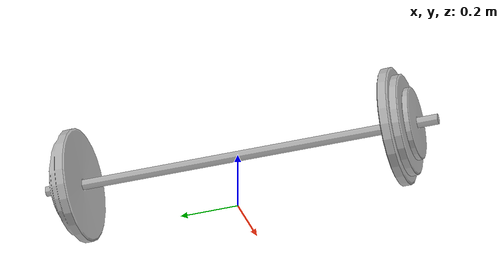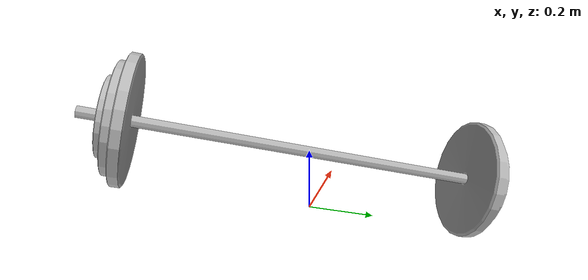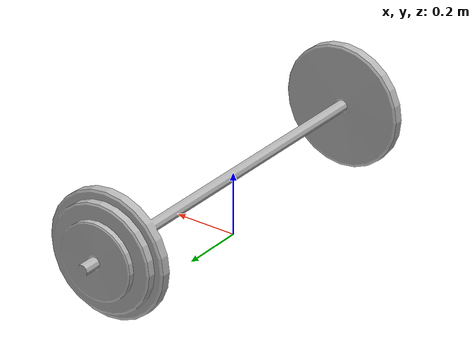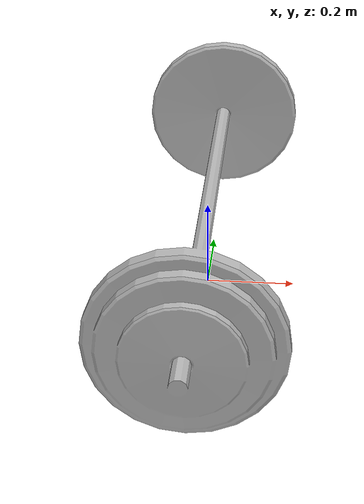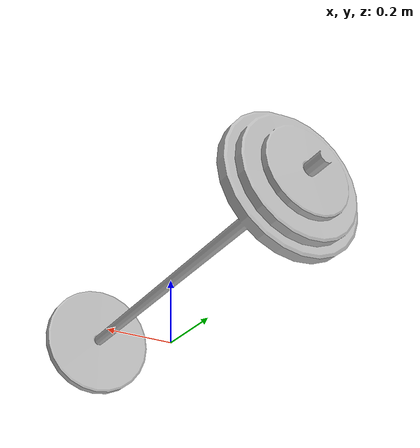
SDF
<?xml version="1.0" ?>
<sdf version="1.6">
  <model name="aws_robomaker_residential_Dumbbell_01">
    <link name="link">
      <inertial>
        <mass>80</mass>

        <!-- slender rod -->
        <inertia>
          <ixx>14.601</ixx>
          <ixy>0</ixy>
          <ixz>0</ixz>
          <iyy>0</iyy>
          <iyz>0</iyz>
          <izz>14.601</izz>
        </inertia>
      </inertial>
      <collision name="collision">
        <geometry>
          <mesh>
            <uri>model://aws_robomaker_residential_Dumbbell_01/meshes/aws_Dumbbell_01_collision.DAE</uri>
            <scale>1 1 1</scale>
          </mesh>
        </geometry>
        <max_contacts>10</max_contacts>
          <surface>
            <contact>
              <ode/>
            </contact>
            <bounce/>
            <friction>
              <torsional>
                <ode/>
              </torsional>
              <ode/>
            </friction>
          </surface>
      </collision>
      <visual name="visual">
	    <geometry>
          <mesh>
            <uri>model://aws_robomaker_residential_Dumbbell_01/meshes/aws_Dumbbell_01_visual.DAE</uri>
          </mesh>
        </geometry>
      <meta> <layer> 1 </layer></meta>
</visual>
    </link>
    <static>1</static>
  </model>
</sdf>
